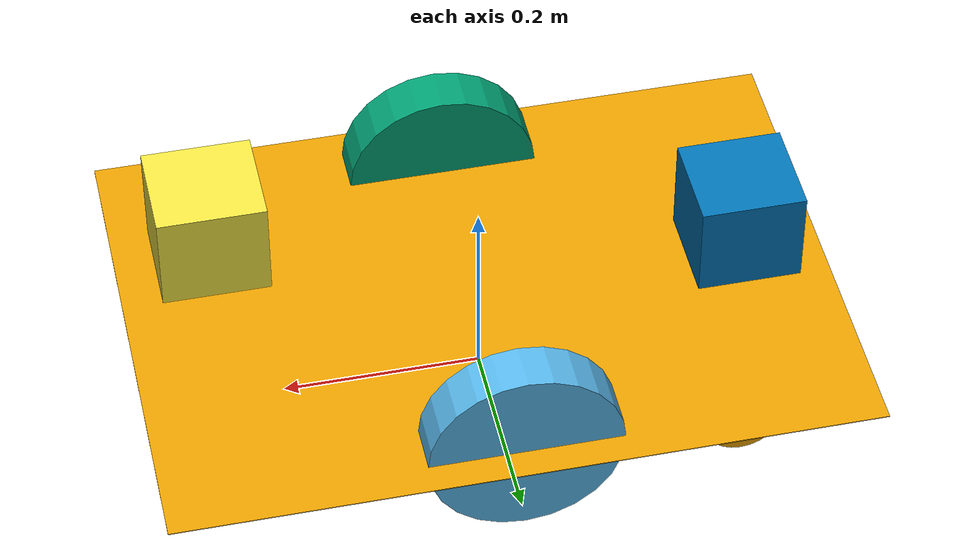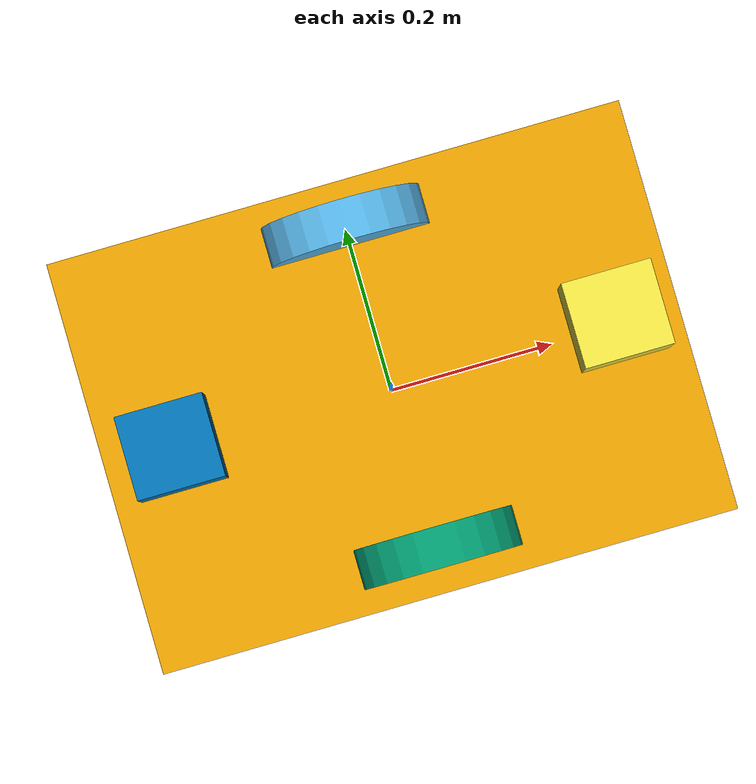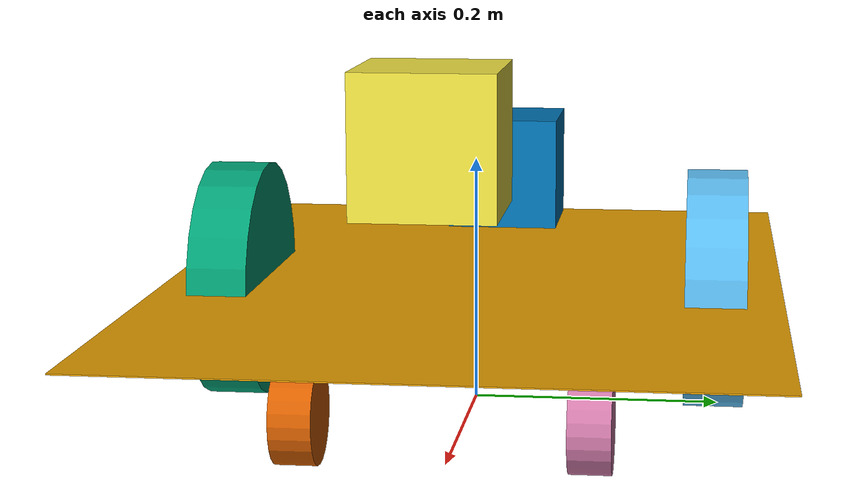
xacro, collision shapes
<?xml version="1.0"?>

<robot name="omronld" xmlns:xacro="http://ros.org/wiki/xacro">

  <!--general-->

  <xacro:arg name="robot_namespace" default="/omronld" />
  <xacro:property name="M_PI" value="3.14159"/>

  <!--wheels-->

  <!-- Wheel Mounting Positions -->
  <xacro:property name="wheelbase" value="0" />
  <xacro:property name="track" value="0.3929777" />
  <xacro:property name="wheel_vertical_offset" value="${0.1936863/2}" />

  <!-- Wheel Properties -->
  <xacro:property name="wheel_length" value="0.048" />
  <xacro:property name="wheel_radius" value="${0.1936863/2}" />

  <!-- Include URDF/XACRO Files -->
  <xacro:include filename="$(find omronld_description)/urdf/omronld_wheel.urdf.xacro" />
  <xacro:include filename="$(find omronld_description)/urdf/omronld_caster.urdf.xacro" />

  <!-- LASER -->
  <xacro:include filename="$(find omronld_description)/urdf/laser/sick_lms1xx.urdf.xacro" />
  <xacro:include filename="$(find robots_ee_pkg)/urdf/camera/r200.urdf.xacro"/>

  <!-- base_link origin point is center of rotation, on the floor. -->

  <link name="base_link">

    <inertial>
      <mass value="63.5664" /> <!-- kg -->
      <inertia ixx="3.1802" ixy="0" ixz="0" iyy="2.9908" iyz="0" izz="2.2912" />
    </inertial>

    <visual>
      <geometry name="base_link_visual_geom">
        <mesh filename="package://omronld_description/meshes/omronld_visual.stl" scale="0.001 0.001 0.001" />
      </geometry>
      <origin xyz="-0.000880947 0 ${0.0375+0.0501498}" rpy="${M_PI/2} 0 ${M_PI/2}" />
    </visual>

    <collision name="base_link_collision">
      <geometry name="base_link_collision_geom">
        <box size="0.7 0.5 0.001" />
      </geometry>
      <origin xyz="0 0 0.1" rpy="0 0 0" />
    </collision>

  </link>

  <!-- omronld wheel macros -->

  <xacro:omronld_wheel wheel_prefix="left">
    <origin xyz="${wheelbase/2} ${track/2} ${wheel_vertical_offset}" rpy="0 0 0" />
  </xacro:omronld_wheel>

  <xacro:omronld_wheel wheel_prefix="right">
    <origin xyz="${wheelbase/2} ${-track/2} ${wheel_vertical_offset}" rpy="0 0 0" />
  </xacro:omronld_wheel>

  <!-- LASER -->

  <xacro:sick_lms1xx frame="base_laser" parent="base_link" topic="scanFront" robot_namespace="$(arg robot_namespace)">
    <origin xyz="0.2652 0.0 0.201" rpy="${M_PI} 0.0 0.0"/>
  </xacro:sick_lms1xx>

  <xacro:sick_lms1xx frame="base_fake_laser" parent="base_link" topic="scanBack" robot_namespace="$(arg robot_namespace)">
    <origin xyz="-0.2652 0.0 0.105" rpy="${M_PI} 0.0 ${M_PI}"/>
  </xacro:sick_lms1xx>

  <!-- GAZEBO PLUGINS--> <!-- http://wiki.ros.org/urdf/Tutorials/Using%20a%20URDF%20in%20Gazebo-->

  <gazebo>
    <plugin name="gazebo_ros_control" filename="libgazebo_ros_control.so">
      <legacyModeNS>false</legacyModeNS>
      <robotNamespace>/$(arg robot_namespace)</robotNamespace>
    </plugin>
  </gazebo>

<!-- four passive caster  -->

  <xacro:omronld_caster caster_prefix="r_f_caster">
    <origin xyz="0.2076340 ${-0.2159/2} 0.0375" rpy="0 0 0" />
  </xacro:omronld_caster>

  <xacro:omronld_caster caster_prefix="l_f_caster">
    <origin xyz="0.2076340 ${0.2159/2} 0.0375" rpy="0 0 0" />
  </xacro:omronld_caster>

  <xacro:omronld_caster caster_prefix="r_b_caster">
    <origin xyz="-0.2287113 ${-0.3132989/2} 0.0375" rpy="0 0 0" />
  </xacro:omronld_caster>

  <xacro:omronld_caster caster_prefix="l_b_caster">
    <origin xyz="-0.2287113 ${0.3132989/2} 0.0375" rpy="0 0 0" />
  </xacro:omronld_caster>

</robot>

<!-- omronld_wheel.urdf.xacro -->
<robot
  xmlns:sensor="http://playerstage.sourceforge.net/gazebo/xmlschema/#sensor"
  xmlns:controller="http://playerstage.sourceforge.net/gazebo/xmlschema/#controller"
  xmlns:interface="http://playerstage.sourceforge.net/gazebo/xmlschema/#interface"
  xmlns:xacro="http://ros.org/wiki/xacro"
  >

  <!-- Right/Left Wheel -->
  <xacro:macro name="omronld_wheel" params="wheel_prefix *joint_pose">

    	<link name="${wheel_prefix}_wheel_link">

    		<inertial>
      			<mass value="1.1"/>
      			<origin xyz="0 0 0"/>
      			<inertia ixx="0.02" ixy="0" ixz="0" iyy="0.02" iyz="0" izz="0.01" />
      		</inertial>

    		<collision>
			<origin xyz="0 0 0" rpy="${M_PI/2} 0 0" />
			<geometry>
				<cylinder length="${wheel_length}" radius="${wheel_radius}" />
			</geometry>
		</collision>

  </link>

	<gazebo reference="${wheel_prefix}_wheel_link">  <!--http://wiki.ros.org/urdf/Tutorials/Adding%20Physical%20and%20Collision%20Properties%20to%20a%20URDF%20Model-->

		<mu1 value="100.0"/>
		<mu2 value="100.0"/>
		<kp value="10000000.0" />
		<kd value="1.0" />
		<fdir1 value="1 0 0"/>

	</gazebo>

  	<joint name="${wheel_prefix}_wheel" type="continuous">
    		<parent link="base_link"/>
    		<child link="${wheel_prefix}_wheel_link"/>
		<xacro:insert_block name="joint_pose"/>
		<axis xyz="0 1 0" rpy="0 0 0" />

		<joint_properties damping="1.0" friction="10.0"/>

  	</joint>

	<transmission name="${wheel_prefix}_wheel_trans" type="SimpleTransmission">
		<type>transmission_interface/SimpleTransmission</type>
		<actuator name="${wheel_prefix}_wheel_motor">
			<mechanicalReduction>1</mechanicalReduction>
		</actuator>
		<joint name="${wheel_prefix}_wheel">
			<hardwareInterface>hardware_interface/VelocityJointInterface</hardwareInterface>
		</joint>
	</transmission>

   </xacro:macro>

</robot>

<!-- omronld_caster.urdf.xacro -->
<robot
  xmlns:sensor="http://playerstage.sourceforge.net/gazebo/xmlschema/#sensor"
  xmlns:controller="http://playerstage.sourceforge.net/gazebo/xmlschema/#controller"
  xmlns:interface="http://playerstage.sourceforge.net/gazebo/xmlschema/#interface"
  xmlns:xacro="http://ros.org/wiki/xacro"
  >

  <xacro:macro name="omronld_caster" params="caster_prefix *joint_pose">

        <link name="${caster_prefix}_caster_link">

    		<inertial>
      			<mass value="0.05"/>
      			<origin xyz="0 0 0" />
      			<inertia ixx="0.01" ixy="0" ixz="0" iyy="0.01" iyz="0" izz="0.01"/>
		</inertial>

    		<collision>
			<origin xyz="0 0 0" rpy="${M_PI/2} 0 0" />
			<geometry>
				<cylinder length="0.03175" radius="0.0375"/>
			</geometry>
		</collision>
		<visual>
      			<origin xyz="0 0 0" rpy="${M_PI/2} 0 0" />
      			<geometry>
				<cylinder length="0.03175" radius="0.0375"/>
      			</geometry>
		</visual>

        </link>

  	<joint name="${caster_prefix}_caster" type="fixed">
    		<parent link="base_link"/>
    		<child link="${caster_prefix}_caster_link"/>
		<axis xyz="0 0 1" rpy="0 0 0" />
		<xacro:insert_block name="joint_pose"/>

  	</joint>

   </xacro:macro>

</robot>

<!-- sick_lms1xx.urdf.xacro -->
<robot xmlns:xacro="http://ros.org/wiki/xacro">

  <xacro:macro name="sick_lms1xx" params="frame:=laser parent:=base_link topic:=scan sample_size:=720 update_rate:=50
               min_angle:=-2.0944 max_angle:=2.0944 min_range:=0.1 max_range:=15 robot_namespace:=/ *origin" >
    <link name="${frame}">
      <inertial>
        <mass value="1.1" />
        <origin xyz="0 0 0" />
        <inertia ixx="${0.0833333 * 1.1 * (0.102*0.102 + 0.152*0.152)}" ixy="0.0" ixz="0.0"
          iyy="${0.0833333 * 1.1 * (0.105*0.105 + 0.152*0.152)}" iyz="0.0"
          izz="${0.0833333 * 1.1 * (0.105*0.105 + 0.102*0.102)}" />
      </inertial>
      <visual>
        <origin xyz="0 0 0" rpy="0 0 0" />
        <geometry>
          <!-- Origin of this mesh is the focal point of the LIDAR. -->
          <mesh filename="package://omronld_description/meshes/laser/sick-lms1xx.dae" />
        </geometry>
      </visual>
      <collision>
        <origin xyz="0 0 -0.05" rpy="0 0 0" />
        <geometry>
          <box size="0.105 0.1 0.1" />
        </geometry>
      </collision>
    </link>

    <joint name="${frame}_joint" type="fixed">
      <xacro:insert_block name="origin"/>
      <parent link="${parent}" />
      <child link="${frame}" />
    </joint>

    <gazebo reference="${frame}">
      <turnGravityOff>false</turnGravityOff>
      <sensor type="ray" name="${frame}">
        <pose>0 0 0 0 0 0</pose>
        <visualize>false</visualize>
        <update_rate>${update_rate}</update_rate>
        <ray>
          <scan>
            <horizontal>
              <samples>${sample_size}</samples>
              <resolution>1</resolution>
              <min_angle>${min_angle}</min_angle>
              <max_angle>${max_angle}</max_angle>
            </horizontal>
          </scan>
          <range>
            <min>${min_range}</min>
            <max>${max_range}</max>
            <resolution>0.01</resolution>
          </range>
          <noise>
            <type>gaussian</type>
            <mean>0.0</mean>
            <stddev>0.001</stddev>
          </noise>
        </ray>
        <plugin name="gazebo_ros_laser" filename="libgazebo_ros_laser.so">
          <topicName>${topic}</topicName>
          <frameName>${frame}</frameName>
          <robotNamespace>/</robotNamespace>
        </plugin>
      </sensor>
    </gazebo>
  </xacro:macro>
</robot>
